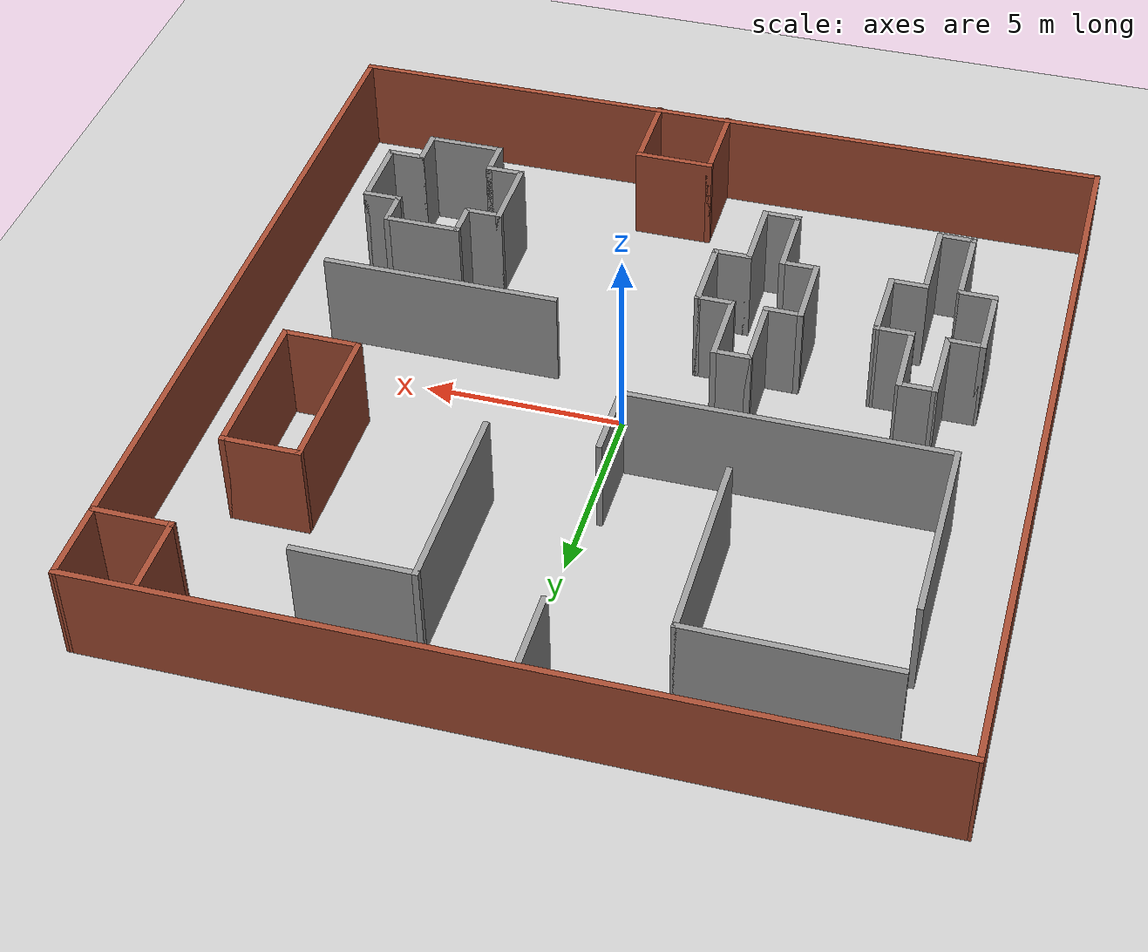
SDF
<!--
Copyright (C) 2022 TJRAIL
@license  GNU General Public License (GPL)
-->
<?xml version="1.0" ?>
<sdf version='1.6'>
  <world name='default'>
    <include>
      <uri>model://ground_plane</uri>
    </include>
    <include>
      <uri>model://sun</uri>
    </include>
    <gravity>0 0 -9.8</gravity>
    <magnetic_field>6e-06 2.3e-05 -4.2e-05</magnetic_field>
    <atmosphere type='adiabatic'/>
    <physics type='ode'>
      <max_step_size>0.001</max_step_size>
      <real_time_factor>1</real_time_factor>
      <real_time_update_rate>1000</real_time_update_rate>
    </physics>
    <scene>
      <ambient>0.4 0.4 0.4 1</ambient>
      <background>0.7 0.7 0.7 1</background>
      <shadows>1</shadows>
    </scene>
    <wind/>
    <spherical_coordinates>
      <surface_model>EARTH_WGS84</surface_model>
      <latitude_deg>0</latitude_deg>
      <longitude_deg>0</longitude_deg>
      <elevation>0</elevation>
      <heading_deg>0</heading_deg>
    </spherical_coordinates>

  <model name='TJRAIL_workshop'>
    <pose>-0.14843 0.267473 0 0 -0 0</pose>
    <link name='Wall_0'>
      <collision name='Wall_0_Collision'>
        <geometry>
          <box>
            <size>20 0.15 2.5</size>
          </box>
        </geometry>
        <pose>0 0 1.25 0 -0 0</pose>
      </collision>
      <visual name='Wall_0_Visual'>
        <pose>0 0 1.25 0 -0 0</pose>
        <geometry>
          <box>
            <size>20 0.15 2.5</size>
          </box>
        </geometry>
        <material>
          <script>
            <uri>file://media/materials/scripts/gazebo.material</uri>
            <name>Gazebo/Bricks</name>
          </script>
          <ambient>1 1 1 1</ambient>
        </material>
        <meta>
          <layer>0</layer>
        </meta>
      </visual>
      <pose>-9.92485 -0.055189 0 0 -0 -1.57039</pose>
    </link>
    <link name='Wall_100'>
      <collision name='Wall_100_Collision'>
        <geometry>
          <box>
            <size>2.04092 0.15 2.5</size>
          </box>
        </geometry>
        <pose>0 0 1.25 0 -0 0</pose>
      </collision>
      <visual name='Wall_100_Visual'>
        <pose>0 0 1.25 0 -0 0</pose>
        <geometry>
          <box>
            <size>2.04092 0.15 2.5</size>
          </box>
        </geometry>
        <material>
          <script>
            <uri>file://media/materials/scripts/gazebo.material</uri>
            <name>Gazebo/Bricks</name>
          </script>
          <ambient>1 1 1 1</ambient>
        </material>
        <meta>
          <layer>0</layer>
        </meta>
      </visual>
      <pose>0.816698 -7.86145 0 0 -0 0</pose>
    </link>
    <link name='Wall_103'>
      <collision name='Wall_103_Collision'>
        <geometry>
          <box>
            <size>2.25 0.15 2.5</size>
          </box>
        </geometry>
        <pose>0 0 1.25 0 -0 0</pose>
      </collision>
      <visual name='Wall_103_Visual'>
        <pose>0 0 1.25 0 -0 0</pose>
        <geometry>
          <box>
            <size>2.25 0.15 2.5</size>
          </box>
        </geometry>
        <material>
          <script>
            <uri>file://media/materials/scripts/gazebo.material</uri>
            <name>Gazebo/Bricks</name>
          </script>
          <ambient>1 1 1 1</ambient>
        </material>
        <meta>
          <layer>0</layer>
        </meta>
      </visual>
      <pose>-0.12876 -8.91145 0 0 -0 -1.5708</pose>
    </link>
    <link name='Wall_105'>
      <collision name='Wall_105_Collision'>
        <geometry>
          <box>
            <size>2.25 0.15 2.5</size>
          </box>
        </geometry>
        <pose>0 0 1.25 0 -0 0</pose>
      </collision>
      <visual name='Wall_105_Visual'>
        <pose>0 0 1.25 0 -0 0</pose>
        <geometry>
          <box>
            <size>2.25 0.15 2.5</size>
          </box>
        </geometry>
        <material>
          <script>
            <uri>file://media/materials/scripts/gazebo.material</uri>
            <name>Gazebo/Bricks</name>
          </script>
          <ambient>1 1 1 1</ambient>
        </material>
        <meta>
          <layer>0</layer>
        </meta>
      </visual>
      <pose>1.75193 -8.91145 0 0 -0 -1.5708</pose>
    </link>
    <link name='Wall_108'>
      <collision name='Wall_108_Collision'>
        <geometry>
          <box>
            <size>1 0.15 2.5</size>
          </box>
        </geometry>
        <pose>0 0 1.25 0 -0 0</pose>
      </collision>
      <visual name='Wall_108_Visual'>
        <pose>0 0 1.25 0 -0 0</pose>
        <geometry>
          <box>
            <size>1 0.15 2.5</size>
          </box>
        </geometry>
        <material>
          <script>
            <uri>file://media/materials/scripts/gazebo.material</uri>
            <name>Gazebo/Grey</name>
          </script>
          <ambient>1 1 1 1</ambient>
        </material>
        <meta>
          <layer>0</layer>
        </meta>
      </visual>
      <pose>7.63397 -4.39384 0 0 -0 3.14159</pose>
    </link>
    <link name='Wall_109'>
      <collision name='Wall_109_Collision'>
        <geometry>
          <box>
            <size>1 0.15 2.5</size>
          </box>
        </geometry>
        <pose>0 0 1.25 0 -0 0</pose>
      </collision>
      <visual name='Wall_109_Visual'>
        <pose>0 0 1.25 0 -0 0</pose>
        <geometry>
          <box>
            <size>1 0.15 2.5</size>
          </box>
        </geometry>
        <material>
          <script>
            <uri>file://media/materials/scripts/gazebo.material</uri>
            <name>Gazebo/Grey</name>
          </script>
          <ambient>1 1 1 1</ambient>
        </material>
        <meta>
          <layer>0</layer>
        </meta>
      </visual>
      <pose>7.20897 -3.96884 0 0 -0 1.5708</pose>
    </link>
    <link name='Wall_110'>
      <collision name='Wall_110_Collision'>
        <geometry>
          <box>
            <size>2 0.15 2.5</size>
          </box>
        </geometry>
        <pose>0 0 1.25 0 -0 0</pose>
      </collision>
      <visual name='Wall_110_Visual'>
        <pose>0 0 1.25 0 -0 0</pose>
        <geometry>
          <box>
            <size>2 0.15 2.5</size>
          </box>
        </geometry>
        <material>
          <script>
            <uri>file://media/materials/scripts/gazebo.material</uri>
            <name>Gazebo/Grey</name>
          </script>
          <ambient>1 1 1 1</ambient>
        </material>
        <meta>
          <layer>0</layer>
        </meta>
      </visual>
      <pose>6.28397 -3.54384 0 0 -0 3.14159</pose>
    </link>
    <link name='Wall_111'>
      <collision name='Wall_111_Collision'>
        <geometry>
          <box>
            <size>1 0.15 2.5</size>
          </box>
        </geometry>
        <pose>0 0 1.25 0 -0 0</pose>
      </collision>
      <visual name='Wall_111_Visual'>
        <pose>0 0 1.25 0 -0 0</pose>
        <geometry>
          <box>
            <size>1 0.15 2.5</size>
          </box>
        </geometry>
        <material>
          <script>
            <uri>file://media/materials/scripts/gazebo.material</uri>
            <name>Gazebo/Grey</name>
          </script>
          <ambient>1 1 1 1</ambient>
        </material>
        <meta>
          <layer>0</layer>
        </meta>
      </visual>
      <pose>5.35897 -3.96884 0 0 -0 -1.5708</pose>
    </link>
    <link name='Wall_112'>
      <collision name='Wall_112_Collision'>
        <geometry>
          <box>
            <size>1 0.15 2.5</size>
          </box>
        </geometry>
        <pose>0 0 1.25 0 -0 0</pose>
      </collision>
      <visual name='Wall_112_Visual'>
        <pose>0 0 1.25 0 -0 0</pose>
        <geometry>
          <box>
            <size>1 0.15 2.5</size>
          </box>
        </geometry>
        <material>
          <script>
            <uri>file://media/materials/scripts/gazebo.material</uri>
            <name>Gazebo/Grey</name>
          </script>
          <ambient>1 1 1 1</ambient>
        </material>
        <meta>
          <layer>0</layer>
        </meta>
      </visual>
      <pose>4.93397 -4.39384 0 0 -0 3.14159</pose>
    </link>
    <link name='Wall_113'>
      <collision name='Wall_113_Collision'>
        <geometry>
          <box>
            <size>2 0.15 2.5</size>
          </box>
        </geometry>
        <pose>0 0 1.25 0 -0 0</pose>
      </collision>
      <visual name='Wall_113_Visual'>
        <pose>0 0 1.25 0 -0 0</pose>
        <geometry>
          <box>
            <size>2 0.15 2.5</size>
          </box>
        </geometry>
        <material>
          <script>
            <uri>file://media/materials/scripts/gazebo.material</uri>
            <name>Gazebo/Grey</name>
          </script>
          <ambient>1 1 1 1</ambient>
        </material>
        <meta>
          <layer>0</layer>
        </meta>
      </visual>
      <pose>4.50897 -5.31884 0 0 -0 -1.5708</pose>
    </link>
    <link name='Wall_114'>
      <collision name='Wall_114_Collision'>
        <geometry>
          <box>
            <size>1 0.15 2.5</size>
          </box>
        </geometry>
        <pose>0 0 1.25 0 -0 0</pose>
      </collision>
      <visual name='Wall_114_Visual'>
        <pose>0 0 1.25 0 -0 0</pose>
        <geometry>
          <box>
            <size>1 0.15 2.5</size>
          </box>
        </geometry>
        <material>
          <script>
            <uri>file://media/materials/scripts/gazebo.material</uri>
            <name>Gazebo/Grey</name>
          </script>
          <ambient>1 1 1 1</ambient>
        </material>
        <meta>
          <layer>0</layer>
        </meta>
      </visual>
      <pose>4.93397 -6.24384 0 0 -0 0</pose>
    </link>
    <link name='Wall_115'>
      <collision name='Wall_115_Collision'>
        <geometry>
          <box>
            <size>1 0.15 2.5</size>
          </box>
        </geometry>
        <pose>0 0 1.25 0 -0 0</pose>
      </collision>
      <visual name='Wall_115_Visual'>
        <pose>0 0 1.25 0 -0 0</pose>
        <geometry>
          <box>
            <size>1 0.15 2.5</size>
          </box>
        </geometry>
        <material>
          <script>
            <uri>file://media/materials/scripts/gazebo.material</uri>
            <name>Gazebo/Grey</name>
          </script>
          <ambient>1 1 1 1</ambient>
        </material>
        <meta>
          <layer>0</layer>
        </meta>
      </visual>
      <pose>5.35897 -6.66884 0 0 -0 -1.5708</pose>
    </link>
    <link name='Wall_116'>
      <collision name='Wall_116_Collision'>
        <geometry>
          <box>
            <size>2 0.15 2.5</size>
          </box>
        </geometry>
        <pose>0 0 1.25 0 -0 0</pose>
      </collision>
      <visual name='Wall_116_Visual'>
        <pose>0 0 1.25 0 -0 0</pose>
        <geometry>
          <box>
            <size>2 0.15 2.5</size>
          </box>
        </geometry>
        <material>
          <script>
            <uri>file://media/materials/scripts/gazebo.material</uri>
            <name>Gazebo/Grey</name>
          </script>
          <ambient>1 1 1 1</ambient>
        </material>
        <meta>
          <layer>0</layer>
        </meta>
      </visual>
      <pose>6.28397 -7.09384 0 0 -0 0</pose>
    </link>
    <link name='Wall_117'>
      <collision name='Wall_117_Collision'>
        <geometry>
          <box>
            <size>1 0.15 2.5</size>
          </box>
        </geometry>
        <pose>0 0 1.25 0 -0 0</pose>
      </collision>
      <visual name='Wall_117_Visual'>
        <pose>0 0 1.25 0 -0 0</pose>
        <geometry>
          <box>
            <size>1 0.15 2.5</size>
          </box>
        </geometry>
        <material>
          <script>
            <uri>file://media/materials/scripts/gazebo.material</uri>
            <name>Gazebo/Grey</name>
          </script>
          <ambient>1 1 1 1</ambient>
        </material>
        <meta>
          <layer>0</layer>
        </meta>
      </visual>
      <pose>7.20897 -6.66884 0 0 -0 1.5708</pose>
    </link>
    <link name='Wall_118'>
      <collision name='Wall_118_Collision'>
        <geometry>
          <box>
            <size>1 0.15 2.5</size>
          </box>
        </geometry>
        <pose>0 0 1.25 0 -0 0</pose>
      </collision>
      <visual name='Wall_118_Visual'>
        <pose>0 0 1.25 0 -0 0</pose>
        <geometry>
          <box>
            <size>1 0.15 2.5</size>
          </box>
        </geometry>
        <material>
          <script>
            <uri>file://media/materials/scripts/gazebo.material</uri>
            <name>Gazebo/Grey</name>
          </script>
          <ambient>1 1 1 1</ambient>
        </material>
        <meta>
          <layer>0</layer>
        </meta>
      </visual>
      <pose>7.63397 -6.24384 0 0 -0 0</pose>
    </link>
    <link name='Wall_119'>
      <collision name='Wall_119_Collision'>
        <geometry>
          <box>
            <size>2 0.15 2.5</size>
          </box>
        </geometry>
        <pose>0 0 1.25 0 -0 0</pose>
      </collision>
      <visual name='Wall_119_Visual'>
        <pose>0 0 1.25 0 -0 0</pose>
        <geometry>
          <box>
            <size>2 0.15 2.5</size>
          </box>
        </geometry>
        <material>
          <script>
            <uri>file://media/materials/scripts/gazebo.material</uri>
            <name>Gazebo/Grey</name>
          </script>
          <ambient>1 1 1 1</ambient>
        </material>
        <meta>
          <layer>0</layer>
        </meta>
      </visual>
      <pose>8.05897 -5.31884 0 0 -0 1.5708</pose>
    </link>
    <link name='Wall_13'>
      <collision name='Wall_13_Collision'>
        <geometry>
          <box>
            <size>5 0.15 2.5</size>
          </box>
        </geometry>
        <pose>0 0 1.25 0 -0 0</pose>
      </collision>
      <visual name='Wall_13_Visual'>
        <pose>0 0 1.25 0 -0 0</pose>
        <geometry>
          <box>
            <size>5 0.15 2.5</size>
          </box>
        </geometry>
        <material>
          <script>
            <uri>file://media/materials/scripts/gazebo.material</uri>
            <name>Gazebo/Grey</name>
          </script>
          <ambient>1 1 1 1</ambient>
        </material>
        <meta>
          <layer>0</layer>
        </meta>
      </visual>
      <pose>-5.67747 7.9887 0 0 -0 0</pose>
    </link>
    <link name='Wall_14'>
      <collision name='Wall_14_Collision'>
        <geometry>
          <box>
            <size>5 0.15 2.5</size>
          </box>
        </geometry>
        <pose>0 0 1.25 0 -0 0</pose>
      </collision>
      <visual name='Wall_14_Visual'>
        <pose>0 0 1.25 0 -0 0</pose>
        <geometry>
          <box>
            <size>5 0.15 2.5</size>
          </box>
        </geometry>
        <material>
          <script>
            <uri>file://media/materials/scripts/gazebo.material</uri>
            <name>Gazebo/Grey</name>
          </script>
          <ambient>1 1 1 1</ambient>
        </material>
        <meta>
          <layer>0</layer>
        </meta>
      </visual>
      <pose>-3.25247 5.5637 0 0 -0 -1.5708</pose>
    </link>
    <link name='Wall_17'>
      <collision name='Wall_17_Collision'>
        <geometry>
          <box>
            <size>5 0.15 2.5</size>
          </box>
        </geometry>
        <pose>0 0 1.25 0 -0 0</pose>
      </collision>
      <visual name='Wall_17_Visual'>
        <pose>0 0 1.25 0 -0 0</pose>
        <geometry>
          <box>
            <size>5 0.15 2.5</size>
          </box>
        </geometry>
        <material>
          <script>
            <uri>file://media/materials/scripts/gazebo.material</uri>
            <name>Gazebo/Grey</name>
          </script>
          <ambient>1 1 1 1</ambient>
        </material>
        <meta>
          <layer>0</layer>
        </meta>
      </visual>
      <pose>-8.10247 3.7137 0 0 -0 -1.5708</pose>
    </link>
    <link name='Wall_18'>
      <collision name='Wall_18_Collision'>
        <geometry>
          <box>
            <size>8 0.15 2.5</size>
          </box>
        </geometry>
        <pose>0 0 1.25 0 -0 0</pose>
      </collision>
      <visual name='Wall_18_Visual'>
        <pose>0 0 1.25 0 -0 0</pose>
        <geometry>
          <box>
            <size>8 0.15 2.5</size>
          </box>
        </geometry>
        <material>
          <script>
            <uri>file://media/materials/scripts/gazebo.material</uri>
            <name>Gazebo/Grey</name>
          </script>
          <ambient>1 1 1 1</ambient>
        </material>
        <meta>
          <layer>0</layer>
        </meta>
      </visual>
      <pose>-4.17747 1.2887 0 0 -0 0</pose>
    </link>
    <link name='Wall_19'>
      <collision name='Wall_19_Collision'>
        <geometry>
          <box>
            <size>2 0.15 2.5</size>
          </box>
        </geometry>
        <pose>0 0 1.25 0 -0 0</pose>
      </collision>
      <visual name='Wall_19_Visual'>
        <pose>0 0 1.25 0 -0 0</pose>
        <geometry>
          <box>
            <size>2 0.15 2.5</size>
          </box>
        </geometry>
        <material>
          <script>
            <uri>file://media/materials/scripts/gazebo.material</uri>
            <name>Gazebo/Grey</name>
          </script>
          <ambient>1 1 1 1</ambient>
        </material>
        <meta>
          <layer>0</layer>
        </meta>
      </visual>
      <pose>-0.252467 2.2137 0 0 -0 1.5708</pose>
    </link>
    <link name='Wall_22'>
      <collision name='Wall_22_Collision'>
        <geometry>
          <box>
            <size>2 0.15 2.5</size>
          </box>
        </geometry>
        <pose>0 0 1.25 0 -0 0</pose>
      </collision>
      <visual name='Wall_22_Visual'>
        <pose>0 0 1.25 0 -0 0</pose>
        <geometry>
          <box>
            <size>2 0.15 2.5</size>
          </box>
        </geometry>
        <material>
          <script>
            <uri>file://media/materials/scripts/gazebo.material</uri>
            <name>Gazebo/Grey</name>
          </script>
          <ambient>1 1 1 1</ambient>
        </material>
        <meta>
          <layer>0</layer>
        </meta>
      </visual>
      <pose>-0.402467 8.9137 0 0 -0 1.5708</pose>
    </link>
    <link name='Wall_25'>
      <collision name='Wall_25_Collision'>
        <geometry>
          <box>
            <size>3 0.15 2.5</size>
          </box>
        </geometry>
        <pose>0 0 1.25 0 -0 0</pose>
      </collision>
      <visual name='Wall_25_Visual'>
        <pose>0 0 1.25 0 -0 0</pose>
        <geometry>
          <box>
            <size>3 0.15 2.5</size>
          </box>
        </geometry>
        <material>
          <script>
            <uri>file://media/materials/scripts/gazebo.material</uri>
            <name>Gazebo/Grey</name>
          </script>
          <ambient>1 1 1 1</ambient>
        </material>
        <meta>
          <layer>0</layer>
        </meta>
      </visual>
      <pose>3.87253 7.9887 0 0 -0 0</pose>
    </link>
    <link name='Wall_27'>
      <collision name='Wall_27_Collision'>
        <geometry>
          <box>
            <size>5 0.15 2.5</size>
          </box>
        </geometry>
        <pose>0 0 1.25 0 -0 0</pose>
      </collision>
      <visual name='Wall_27_Visual'>
        <pose>0 0 1.25 0 -0 0</pose>
        <geometry>
          <box>
            <size>5 0.15 2.5</size>
          </box>
        </geometry>
        <material>
          <script>
            <uri>file://media/materials/scripts/gazebo.material</uri>
            <name>Gazebo/Grey</name>
          </script>
          <ambient>1 1 1 1</ambient>
        </material>
        <meta>
          <layer>0</layer>
        </meta>
      </visual>
      <pose>2.44753 5.5637 0 0 -0 -1.5708</pose>
    </link>
    <link name='Wall_31'>
      <collision name='Wall_31_Collision'>
        <geometry>
          <box>
            <size>2 0.15 2.5</size>
          </box>
        </geometry>
        <pose>0 0 1.25 0 -0 0</pose>
      </collision>
      <visual name='Wall_31_Visual'>
        <pose>0 0 1.25 0 -0 0</pose>
        <geometry>
          <box>
            <size>2 0.15 2.5</size>
          </box>
        </geometry>
        <material>
          <script>
            <uri>file://media/materials/scripts/gazebo.material</uri>
            <name>Gazebo/Bricks</name>
          </script>
          <ambient>1 1 1 1</ambient>
        </material>
        <meta>
          <layer>0</layer>
        </meta>
      </visual>
      <pose>8.98397 8.01792 0 0 -0 3.14159</pose>
    </link>
    <link name='Wall_32'>
      <collision name='Wall_32_Collision'>
        <geometry>
          <box>
            <size>2 0.15 2.5</size>
          </box>
        </geometry>
        <pose>0 0 1.25 0 -0 0</pose>
      </collision>
      <visual name='Wall_32_Visual'>
        <pose>0 0 1.25 0 -0 0</pose>
        <geometry>
          <box>
            <size>2 0.15 2.5</size>
          </box>
        </geometry>
        <material>
          <script>
            <uri>file://media/materials/scripts/gazebo.material</uri>
            <name>Gazebo/Bricks</name>
          </script>
          <ambient>1 1 1 1</ambient>
        </material>
        <meta>
          <layer>0</layer>
        </meta>
      </visual>
      <pose>8.05897 8.93116 0 0 -0 1.5708</pose>
    </link>
    <link name='Wall_35'>
      <collision name='Wall_35_Collision'>
        <geometry>
          <box>
            <size>2 0.15 2.5</size>
          </box>
        </geometry>
        <pose>0 0 1.25 0 -0 0</pose>
      </collision>
      <visual name='Wall_35_Visual'>
        <pose>0 0 1.25 0 -0 0</pose>
        <geometry>
          <box>
            <size>2 0.15 2.5</size>
          </box>
        </geometry>
        <material>
          <script>
            <uri>file://media/materials/scripts/gazebo.material</uri>
            <name>Gazebo/Bricks</name>
          </script>
          <ambient>1 1 1 1</ambient>
        </material>
        <meta>
          <layer>0</layer>
        </meta>
      </visual>
      <pose>7.13397 5.15616 0 0 -0 3.14159</pose>
    </link>
    <link name='Wall_36'>
      <collision name='Wall_36_Collision'>
        <geometry>
          <box>
            <size>4 0.15 2.5</size>
          </box>
        </geometry>
        <pose>0 0 1.25 0 -0 0</pose>
      </collision>
      <visual name='Wall_36_Visual'>
        <pose>0 0 1.25 0 -0 0</pose>
        <geometry>
          <box>
            <size>4 0.15 2.5</size>
          </box>
        </geometry>
        <material>
          <script>
            <uri>file://media/materials/scripts/gazebo.material</uri>
            <name>Gazebo/Bricks</name>
          </script>
          <ambient>1 1 1 1</ambient>
        </material>
        <meta>
          <layer>0</layer>
        </meta>
      </visual>
      <pose>6.20897 3.23116 0 0 -0 -1.5708</pose>
    </link>
    <link name='Wall_37'>
      <collision name='Wall_37_Collision'>
        <geometry>
          <box>
            <size>2 0.15 2.5</size>
          </box>
        </geometry>
        <pose>0 0 1.25 0 -0 0</pose>
      </collision>
      <visual name='Wall_37_Visual'>
        <pose>0 0 1.25 0 -0 0</pose>
        <geometry>
          <box>
            <size>2 0.15 2.5</size>
          </box>
        </geometry>
        <material>
          <script>
            <uri>file://media/materials/scripts/gazebo.material</uri>
            <name>Gazebo/Bricks</name>
          </script>
          <ambient>1 1 1 1</ambient>
        </material>
        <meta>
          <layer>0</layer>
        </meta>
      </visual>
      <pose>7.13397 1.30616 0 0 -0 0</pose>
    </link>
    <link name='Wall_38'>
      <collision name='Wall_38_Collision'>
        <geometry>
          <box>
            <size>4 0.15 2.5</size>
          </box>
        </geometry>
        <pose>0 0 1.25 0 -0 0</pose>
      </collision>
      <visual name='Wall_38_Visual'>
        <pose>0 0 1.25 0 -0 0</pose>
        <geometry>
          <box>
            <size>4 0.15 2.5</size>
          </box>
        </geometry>
        <material>
          <script>
            <uri>file://media/materials/scripts/gazebo.material</uri>
            <name>Gazebo/Bricks</name>
          </script>
          <ambient>1 1 1 1</ambient>
        </material>
        <meta>
          <layer>0</layer>
        </meta>
      </visual>
      <pose>8.05897 3.23116 0 0 -0 1.5708</pose>
    </link>
    <link name='Wall_4'>
      <collision name='Wall_4_Collision'>
        <geometry>
          <box>
            <size>20 0.15 2.5</size>
          </box>
        </geometry>
        <pose>0 0 1.25 0 -0 0</pose>
      </collision>
      <visual name='Wall_4_Visual'>
        <pose>0 0 1.25 0 -0 0</pose>
        <geometry>
          <box>
            <size>20 0.15 2.5</size>
          </box>
        </geometry>
        <material>
          <script>
            <uri>file://media/materials/scripts/gazebo.material</uri>
            <name>Gazebo/Bricks</name>
          </script>
          <ambient>1 1 1 1</ambient>
        </material>
        <meta>
          <layer>0</layer>
        </meta>
      </visual>
      <pose>0.004049 -9.92498 0 0 -0 0.005561</pose>
    </link>
    <link name='Wall_41'>
      <collision name='Wall_41_Collision'>
        <geometry>
          <box>
            <size>6 0.15 2.5</size>
          </box>
        </geometry>
        <pose>0 0 1.25 0 -0 0</pose>
      </collision>
      <visual name='Wall_41_Visual'>
        <pose>0 0 1.25 0 -0 0</pose>
        <geometry>
          <box>
            <size>6 0.15 2.5</size>
          </box>
        </geometry>
        <material>
          <script>
            <uri>file://media/materials/scripts/gazebo.material</uri>
            <name>Gazebo/Grey</name>
          </script>
          <ambient>1 1 1 1</ambient>
        </material>
        <meta>
          <layer>0</layer>
        </meta>
      </visual>
      <pose>5.13397 -1.54384 0 0 -0 3.14159</pose>
    </link>
    <link name='Wall_44'>
      <collision name='Wall_44_Collision'>
        <geometry>
          <box>
            <size>2 0.15 2.5</size>
          </box>
        </geometry>
        <pose>0 0 1.25 0 -0 0</pose>
      </collision>
      <visual name='Wall_44_Visual'>
        <pose>0 0 1.25 0 -0 0</pose>
        <geometry>
          <box>
            <size>2 0.15 2.5</size>
          </box>
        </geometry>
        <material>
          <script>
            <uri>file://media/materials/scripts/gazebo.material</uri>
            <name>Gazebo/Grey</name>
          </script>
          <ambient>1 1 1 1</ambient>
        </material>
        <meta>
          <layer>0</layer>
        </meta>
      </visual>
      <pose>-8.10247 -3.4863 0 0 -0 -1.5708</pose>
    </link>
    <link name='Wall_45'>
      <collision name='Wall_45_Collision'>
        <geometry>
          <box>
            <size>1 0.15 2.5</size>
          </box>
        </geometry>
        <pose>0 0 1.25 0 -0 0</pose>
      </collision>
      <visual name='Wall_45_Visual'>
        <pose>0 0 1.25 0 -0 0</pose>
        <geometry>
          <box>
            <size>1 0.15 2.5</size>
          </box>
        </geometry>
        <material>
          <script>
            <uri>file://media/materials/scripts/gazebo.material</uri>
            <name>Gazebo/Grey</name>
          </script>
          <ambient>1 1 1 1</ambient>
        </material>
        <meta>
          <layer>0</layer>
        </meta>
      </visual>
      <pose>-7.67747 -4.4113 0 0 -0 0</pose>
    </link>
    <link name='Wall_46'>
      <collision name='Wall_46_Collision'>
        <geometry>
          <box>
            <size>2.25 0.15 2.5</size>
          </box>
        </geometry>
        <pose>0 0 1.25 0 -0 0</pose>
      </collision>
      <visual name='Wall_46_Visual'>
        <pose>0 0 1.25 0 -0 0</pose>
        <geometry>
          <box>
            <size>2.25 0.15 2.5</size>
          </box>
        </geometry>
        <material>
          <script>
            <uri>file://media/materials/scripts/gazebo.material</uri>
            <name>Gazebo/Grey</name>
          </script>
          <ambient>1 1 1 1</ambient>
        </material>
        <meta>
          <layer>0</layer>
        </meta>
      </visual>
      <pose>-7.25247 -5.4613 0 0 -0 -1.5708</pose>
    </link>
    <link name='Wall_47'>
      <collision name='Wall_47_Collision'>
        <geometry>
          <box>
            <size>1 0.15 2.5</size>
          </box>
        </geometry>
        <pose>0 0 1.25 0 -0 0</pose>
      </collision>
      <visual name='Wall_47_Visual'>
        <pose>0 0 1.25 0 -0 0</pose>
        <geometry>
          <box>
            <size>1 0.15 2.5</size>
          </box>
        </geometry>
        <material>
          <script>
            <uri>file://media/materials/scripts/gazebo.material</uri>
            <name>Gazebo/Grey</name>
          </script>
          <ambient>1 1 1 1</ambient>
        </material>
        <meta>
          <layer>0</layer>
        </meta>
      </visual>
      <pose>-6.82747 -6.5113 0 0 -0 0</pose>
    </link>
    <link name='Wall_5'>
      <collision name='Wall_5_Collision'>
        <geometry>
          <box>
            <size>20 0.15 2.5</size>
          </box>
        </geometry>
        <pose>0 0 1.25 0 -0 0</pose>
      </collision>
      <visual name='Wall_5_Visual'>
        <pose>0 0 1.25 0 -0 0</pose>
        <geometry>
          <box>
            <size>20 0.15 2.5</size>
          </box>
        </geometry>
        <material>
          <script>
            <uri>file://media/materials/scripts/gazebo.material</uri>
            <name>Gazebo/Bricks</name>
          </script>
          <ambient>1 1 1 1</ambient>
        </material>
        <meta>
          <layer>0</layer>
        </meta>
      </visual>
      <pose>9.92485 0.055189 0 0 -0 1.5712</pose>
    </link>
    <link name='Wall_50'>
      <collision name='Wall_50_Collision'>
        <geometry>
          <box>
            <size>2.25 0.15 2.5</size>
          </box>
        </geometry>
        <pose>0 0 1.25 0 -0 0</pose>
      </collision>
      <visual name='Wall_50_Visual'>
        <pose>0 0 1.25 0 -0 0</pose>
        <geometry>
          <box>
            <size>2.25 0.15 2.5</size>
          </box>
        </geometry>
        <material>
          <script>
            <uri>file://media/materials/scripts/gazebo.material</uri>
            <name>Gazebo/Grey</name>
          </script>
          <ambient>1 1 1 1</ambient>
        </material>
        <meta>
          <layer>0</layer>
        </meta>
      </visual>
      <pose>-6.40247 -5.4613 0 0 -0 1.5708</pose>
    </link>
    <link name='Wall_51'>
      <collision name='Wall_51_Collision'>
        <geometry>
          <box>
            <size>1 0.15 2.5</size>
          </box>
        </geometry>
        <pose>0 0 1.25 0 -0 0</pose>
      </collision>
      <visual name='Wall_51_Visual'>
        <pose>0 0 1.25 0 -0 0</pose>
        <geometry>
          <box>
            <size>1 0.15 2.5</size>
          </box>
        </geometry>
        <material>
          <script>
            <uri>file://media/materials/scripts/gazebo.material</uri>
            <name>Gazebo/Grey</name>
          </script>
          <ambient>1 1 1 1</ambient>
        </material>
        <meta>
          <layer>0</layer>
        </meta>
      </visual>
      <pose>-5.97747 -4.4113 0 0 -0 0</pose>
    </link>
    <link name='Wall_52'>
      <collision name='Wall_52_Collision'>
        <geometry>
          <box>
            <size>2 0.15 2.5</size>
          </box>
        </geometry>
        <pose>0 0 1.25 0 -0 0</pose>
      </collision>
      <visual name='Wall_52_Visual'>
        <pose>0 0 1.25 0 -0 0</pose>
        <geometry>
          <box>
            <size>2 0.15 2.5</size>
          </box>
        </geometry>
        <material>
          <script>
            <uri>file://media/materials/scripts/gazebo.material</uri>
            <name>Gazebo/Grey</name>
          </script>
          <ambient>1 1 1 1</ambient>
        </material>
        <meta>
          <layer>0</layer>
        </meta>
      </visual>
      <pose>-5.54061 -3.48638 0 0 -0 1.55798</pose>
    </link>
    <link name='Wall_53'>
      <collision name='Wall_53_Collision'>
        <geometry>
          <box>
            <size>1 0.15 2.5</size>
          </box>
        </geometry>
        <pose>0 0 1.25 0 -0 0</pose>
      </collision>
      <visual name='Wall_53_Visual'>
        <pose>0 0 1.25 0 -0 0</pose>
        <geometry>
          <box>
            <size>1 0.15 2.5</size>
          </box>
        </geometry>
        <material>
          <script>
            <uri>file://media/materials/scripts/gazebo.material</uri>
            <name>Gazebo/Grey</name>
          </script>
          <ambient>1 1 1 1</ambient>
        </material>
        <meta>
          <layer>0</layer>
        </meta>
      </visual>
      <pose>-5.95376 -2.56138 0 0 -0 3.14142</pose>
    </link>
    <link name='Wall_54'>
      <collision name='Wall_54_Collision'>
        <geometry>
          <box>
            <size>2 0.15 2.5</size>
          </box>
        </geometry>
        <pose>0 0 1.25 0 -0 0</pose>
      </collision>
      <visual name='Wall_54_Visual'>
        <pose>0 0 1.25 0 -0 0</pose>
        <geometry>
          <box>
            <size>2 0.15 2.5</size>
          </box>
        </geometry>
        <material>
          <script>
            <uri>file://media/materials/scripts/gazebo.material</uri>
            <name>Gazebo/Grey</name>
          </script>
          <ambient>1 1 1 1</ambient>
        </material>
        <meta>
          <layer>0</layer>
        </meta>
      </visual>
      <pose>-6.39061 -1.6363 0 0 -0 1.58361</pose>
    </link>
    <link name='Wall_59'>
      <collision name='Wall_59_Collision'>
        <geometry>
          <box>
            <size>1 0.15 2.5</size>
          </box>
        </geometry>
        <pose>0 0 1.25 0 -0 0</pose>
      </collision>
      <visual name='Wall_59_Visual'>
        <pose>0 0 1.25 0 -0 0</pose>
        <geometry>
          <box>
            <size>1 0.15 2.5</size>
          </box>
        </geometry>
        <material>
          <script>
            <uri>file://media/materials/scripts/gazebo.material</uri>
            <name>Gazebo/Grey</name>
          </script>
          <ambient>1 1 1 1</ambient>
        </material>
        <meta>
          <layer>0</layer>
        </meta>
      </visual>
      <pose>-7.67747 -2.5613 0 0 -0 0</pose>
    </link>
    <link name='Wall_6'>
      <collision name='Wall_6_Collision'>
        <geometry>
          <box>
            <size>20 0.15 2.5</size>
          </box>
        </geometry>
        <pose>0 0 1.25 0 -0 0</pose>
      </collision>
      <visual name='Wall_6_Visual'>
        <pose>0 0 1.25 0 -0 0</pose>
        <geometry>
          <box>
            <size>20 0.15 2.5</size>
          </box>
        </geometry>
        <material>
          <script>
            <uri>file://media/materials/scripts/gazebo.material</uri>
            <name>Gazebo/Bricks</name>
          </script>
          <ambient>1 1 1 1</ambient>
        </material>
        <meta>
          <layer>0</layer>
        </meta>
      </visual>
      <pose>-0.004049 9.92498 0 0 -0 -3.13603</pose>
    </link>
    <link name='Wall_60'>
      <collision name='Wall_60_Collision'>
        <geometry>
          <box>
            <size>2 0.15 2.5</size>
          </box>
        </geometry>
        <pose>0 0 1.25 0 -0 0</pose>
      </collision>
      <visual name='Wall_60_Visual'>
        <pose>0 0 1.25 0 -0 0</pose>
        <geometry>
          <box>
            <size>2 0.15 2.5</size>
          </box>
        </geometry>
        <material>
          <script>
            <uri>file://media/materials/scripts/gazebo.material</uri>
            <name>Gazebo/Grey</name>
          </script>
          <ambient>1 1 1 1</ambient>
        </material>
        <meta>
          <layer>0</layer>
        </meta>
      </visual>
      <pose>-7.25247 -1.6363 0 0 -0 1.5708</pose>
    </link>
    <link name='Wall_61'>
      <collision name='Wall_61_Collision'>
        <geometry>
          <box>
            <size>1 0.15 2.5</size>
          </box>
        </geometry>
        <pose>0 0 1.25 0 -0 0</pose>
      </collision>
      <visual name='Wall_61_Visual'>
        <pose>0 0 1.25 0 -0 0</pose>
        <geometry>
          <box>
            <size>1 0.15 2.5</size>
          </box>
        </geometry>
        <material>
          <script>
            <uri>file://media/materials/scripts/gazebo.material</uri>
            <name>Gazebo/Grey</name>
          </script>
          <ambient>1 1 1 1</ambient>
        </material>
        <meta>
          <layer>0</layer>
        </meta>
      </visual>
      <pose>-6.82747 -0.7113 0 0 -0 0</pose>
    </link>
    <link name='Wall_83'>
      <collision name='Wall_83_Collision'>
        <geometry>
          <box>
            <size>2 0.15 2.5</size>
          </box>
        </geometry>
        <pose>0 0 1.25 0 -0 0</pose>
      </collision>
      <visual name='Wall_83_Visual'>
        <pose>0 0 1.25 0 -0 0</pose>
        <geometry>
          <box>
            <size>2 0.15 2.5</size>
          </box>
        </geometry>
        <material>
          <script>
            <uri>file://media/materials/scripts/gazebo.material</uri>
            <name>Gazebo/Grey</name>
          </script>
          <ambient>1 1 1 1</ambient>
        </material>
        <meta>
          <layer>0</layer>
        </meta>
      </visual>
      <pose>-3.67876 -3.48645 0 0 -0 -1.5708</pose>
    </link>
    <link name='Wall_84'>
      <collision name='Wall_84_Collision'>
        <geometry>
          <box>
            <size>1 0.15 2.5</size>
          </box>
        </geometry>
        <pose>0 0 1.25 0 -0 0</pose>
      </collision>
      <visual name='Wall_84_Visual'>
        <pose>0 0 1.25 0 -0 0</pose>
        <geometry>
          <box>
            <size>1 0.15 2.5</size>
          </box>
        </geometry>
        <material>
          <script>
            <uri>file://media/materials/scripts/gazebo.material</uri>
            <name>Gazebo/Grey</name>
          </script>
          <ambient>1 1 1 1</ambient>
        </material>
        <meta>
          <layer>0</layer>
        </meta>
      </visual>
      <pose>-3.25376 -4.41145 0 0 -0 0</pose>
    </link>
    <link name='Wall_85'>
      <collision name='Wall_85_Collision'>
        <geometry>
          <box>
            <size>2 0.15 2.5</size>
          </box>
        </geometry>
        <pose>0 0 1.25 0 -0 0</pose>
      </collision>
      <visual name='Wall_85_Visual'>
        <pose>0 0 1.25 0 -0 0</pose>
        <geometry>
          <box>
            <size>2 0.15 2.5</size>
          </box>
        </geometry>
        <material>
          <script>
            <uri>file://media/materials/scripts/gazebo.material</uri>
            <name>Gazebo/Grey</name>
          </script>
          <ambient>1 1 1 1</ambient>
        </material>
        <meta>
          <layer>0</layer>
        </meta>
      </visual>
      <pose>-2.82876 -5.33645 0 0 -0 -1.5708</pose>
    </link>
    <link name='Wall_86'>
      <collision name='Wall_86_Collision'>
        <geometry>
          <box>
            <size>1 0.15 2.5</size>
          </box>
        </geometry>
        <pose>0 0 1.25 0 -0 0</pose>
      </collision>
      <visual name='Wall_86_Visual'>
        <pose>0 0 1.25 0 -0 0</pose>
        <geometry>
          <box>
            <size>1 0.15 2.5</size>
          </box>
        </geometry>
        <material>
          <script>
            <uri>file://media/materials/scripts/gazebo.material</uri>
            <name>Gazebo/Grey</name>
          </script>
          <ambient>1 1 1 1</ambient>
        </material>
        <meta>
          <layer>0</layer>
        </meta>
      </visual>
      <pose>-2.40376 -6.26145 0 0 -0 0</pose>
    </link>
    <link name='Wall_87'>
      <collision name='Wall_87_Collision'>
        <geometry>
          <box>
            <size>2 0.15 2.5</size>
          </box>
        </geometry>
        <pose>0 0 1.25 0 -0 0</pose>
      </collision>
      <visual name='Wall_87_Visual'>
        <pose>0 0 1.25 0 -0 0</pose>
        <geometry>
          <box>
            <size>2 0.15 2.5</size>
          </box>
        </geometry>
        <material>
          <script>
            <uri>file://media/materials/scripts/gazebo.material</uri>
            <name>Gazebo/Grey</name>
          </script>
          <ambient>1 1 1 1</ambient>
        </material>
        <meta>
          <layer>0</layer>
        </meta>
      </visual>
      <pose>-1.97876 -5.33645 0 0 -0 1.5708</pose>
    </link>
    <link name='Wall_88'>
      <collision name='Wall_88_Collision'>
        <geometry>
          <box>
            <size>1 0.15 2.5</size>
          </box>
        </geometry>
        <pose>0 0 1.25 0 -0 0</pose>
      </collision>
      <visual name='Wall_88_Visual'>
        <pose>0 0 1.25 0 -0 0</pose>
        <geometry>
          <box>
            <size>1 0.15 2.5</size>
          </box>
        </geometry>
        <material>
          <script>
            <uri>file://media/materials/scripts/gazebo.material</uri>
            <name>Gazebo/Grey</name>
          </script>
          <ambient>1 1 1 1</ambient>
        </material>
        <meta>
          <layer>0</layer>
        </meta>
      </visual>
      <pose>-1.55376 -4.41145 0 0 -0 0</pose>
    </link>
    <link name='Wall_89'>
      <collision name='Wall_89_Collision'>
        <geometry>
          <box>
            <size>2 0.15 2.5</size>
          </box>
        </geometry>
        <pose>0 0 1.25 0 -0 0</pose>
      </collision>
      <visual name='Wall_89_Visual'>
        <pose>0 0 1.25 0 -0 0</pose>
        <geometry>
          <box>
            <size>2 0.15 2.5</size>
          </box>
        </geometry>
        <material>
          <script>
            <uri>file://media/materials/scripts/gazebo.material</uri>
            <name>Gazebo/Grey</name>
          </script>
          <ambient>1 1 1 1</ambient>
        </material>
        <meta>
          <layer>0</layer>
        </meta>
      </visual>
      <pose>-1.12876 -3.48645 0 0 -0 1.5708</pose>
    </link>
    <link name='Wall_90'>
      <collision name='Wall_90_Collision'>
        <geometry>
          <box>
            <size>1 0.15 2.5</size>
          </box>
        </geometry>
        <pose>0 0 1.25 0 -0 0</pose>
      </collision>
      <visual name='Wall_90_Visual'>
        <pose>0 0 1.25 0 -0 0</pose>
        <geometry>
          <box>
            <size>1 0.15 2.5</size>
          </box>
        </geometry>
        <material>
          <script>
            <uri>file://media/materials/scripts/gazebo.material</uri>
            <name>Gazebo/Grey</name>
          </script>
          <ambient>1 1 1 1</ambient>
        </material>
        <meta>
          <layer>0</layer>
        </meta>
      </visual>
      <pose>-1.55376 -2.56145 0 0 -0 3.14159</pose>
    </link>
    <link name='Wall_91'>
      <collision name='Wall_91_Collision'>
        <geometry>
          <box>
            <size>2 0.15 2.5</size>
          </box>
        </geometry>
        <pose>0 0 1.25 0 -0 0</pose>
      </collision>
      <visual name='Wall_91_Visual'>
        <pose>0 0 1.25 0 -0 0</pose>
        <geometry>
          <box>
            <size>2 0.15 2.5</size>
          </box>
        </geometry>
        <material>
          <script>
            <uri>file://media/materials/scripts/gazebo.material</uri>
            <name>Gazebo/Grey</name>
          </script>
          <ambient>1 1 1 1</ambient>
        </material>
        <meta>
          <layer>0</layer>
        </meta>
      </visual>
      <pose>-1.97876 -1.63645 0 0 -0 1.5708</pose>
    </link>
    <link name='Wall_92'>
      <collision name='Wall_92_Collision'>
        <geometry>
          <box>
            <size>1 0.15 2.5</size>
          </box>
        </geometry>
        <pose>0 0 1.25 0 -0 0</pose>
      </collision>
      <visual name='Wall_92_Visual'>
        <pose>0 0 1.25 0 -0 0</pose>
        <geometry>
          <box>
            <size>1 0.15 2.5</size>
          </box>
        </geometry>
        <material>
          <script>
            <uri>file://media/materials/scripts/gazebo.material</uri>
            <name>Gazebo/Grey</name>
          </script>
          <ambient>1 1 1 1</ambient>
        </material>
        <meta>
          <layer>0</layer>
        </meta>
      </visual>
      <pose>-2.40376 -0.711452 0 0 -0 3.14159</pose>
    </link>
    <link name='Wall_93'>
      <collision name='Wall_93_Collision'>
        <geometry>
          <box>
            <size>2 0.15 2.5</size>
          </box>
        </geometry>
        <pose>0 0 1.25 0 -0 0</pose>
      </collision>
      <visual name='Wall_93_Visual'>
        <pose>0 0 1.25 0 -0 0</pose>
        <geometry>
          <box>
            <size>2 0.15 2.5</size>
          </box>
        </geometry>
        <material>
          <script>
            <uri>file://media/materials/scripts/gazebo.material</uri>
            <name>Gazebo/Grey</name>
          </script>
          <ambient>1 1 1 1</ambient>
        </material>
        <meta>
          <layer>0</layer>
        </meta>
      </visual>
      <pose>-2.82876 -1.63645 0 0 -0 -1.5708</pose>
    </link>
    <link name='Wall_94'>
      <collision name='Wall_94_Collision'>
        <geometry>
          <box>
            <size>1 0.15 2.5</size>
          </box>
        </geometry>
        <pose>0 0 1.25 0 -0 0</pose>
      </collision>
      <visual name='Wall_94_Visual'>
        <pose>0 0 1.25 0 -0 0</pose>
        <geometry>
          <box>
            <size>1 0.15 2.5</size>
          </box>
        </geometry>
        <material>
          <script>
            <uri>file://media/materials/scripts/gazebo.material</uri>
            <name>Gazebo/Grey</name>
          </script>
          <ambient>1 1 1 1</ambient>
        </material>
        <meta>
          <layer>0</layer>
        </meta>
      </visual>
      <pose>-3.25376 -2.56145 0 0 -0 -3.14159</pose>
    </link>
    <static>1</static>
  </model>

    <gui fullscreen='0'>
      <camera name='user_camera'>
        <pose>44.1917 -18.6696 30.1606 0 0.569798 2.7562</pose>
        <view_controller>orbit</view_controller>
        <projection_type>perspective</projection_type>
      </camera>
    </gui>
    <plugin filename="libcollision_map_creator.so" name="collision_map_creator"/>

  </world>
</sdf>
